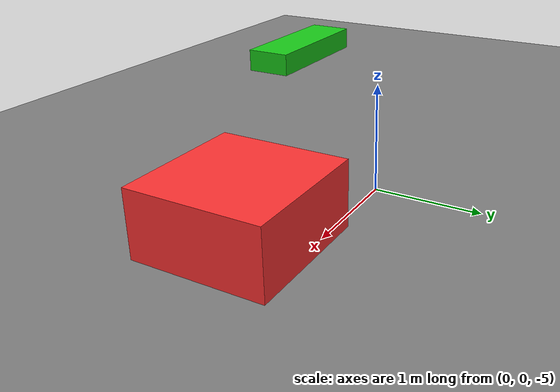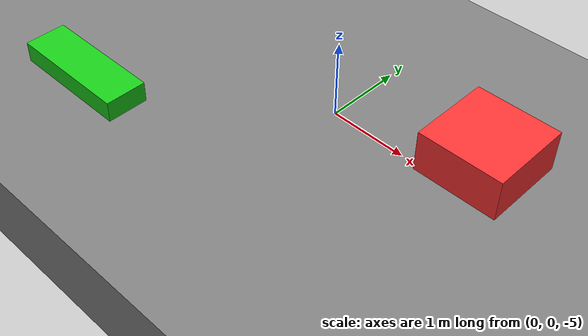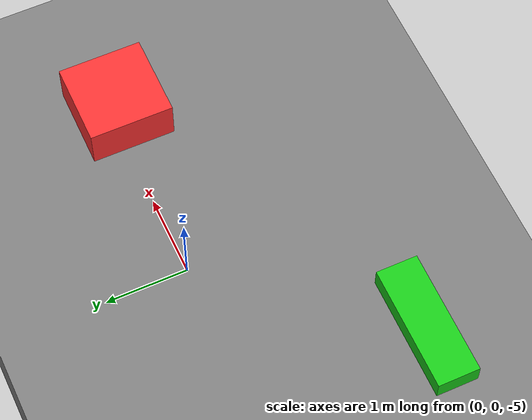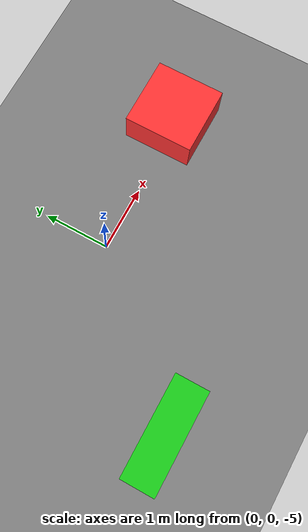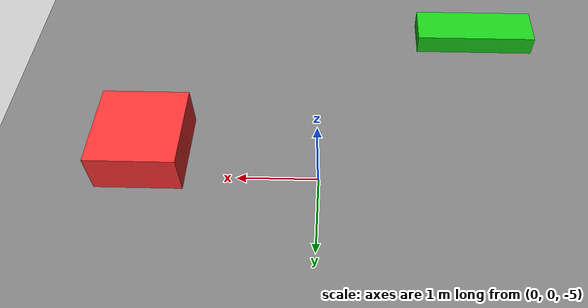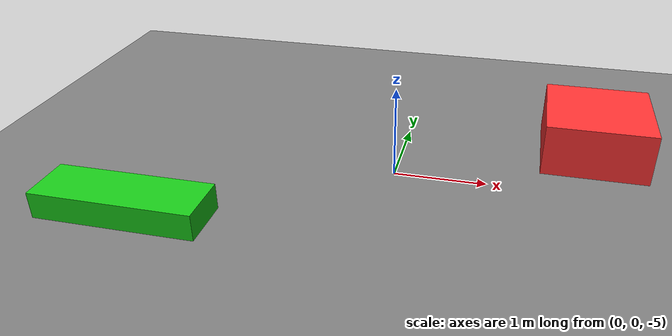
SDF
<?xml version="1.0" ?>
<sdf version='1.7'>
  <world name='PoolWorld2025'>
    <!-- Physics Settings -->
    <physics name='ode_physics' type='ode'>
      <max_step_size>0.003</max_step_size>
      <real_time_factor>1</real_time_factor>
      <real_time_update_rate>1000</real_time_update_rate>
    </physics>

    <!-- Gravity -->
    <gravity>0 0 -9.81</gravity>

    <!-- Buoyancy System (Graded for Air/Water Interface at Z = 0) -->
    <plugin filename="gz-sim-buoyancy-system" name="gz::sim::systems::Buoyancy">
      <graded_buoyancy>
        <default_density>997</default_density>
        <density_change>
          <above_depth>0</above_depth>
          <density>1</density>
        </density_change>
      </graded_buoyancy>
    </plugin>

    <!-- Lighting -->
    <light name='sun' type='directional'>
      <cast_shadows>1</cast_shadows>
      <pose>0 0 10 0 0 0</pose>
      <diffuse>0.8 0.8 0.8 1</diffuse>
      <specular>0.2 0.2 0.2 1</specular>
      <attenuation>
        <range>1000</range>
        <constant>0.9</constant>
        <linear>0.01</linear>
        <quadratic>0.001</quadratic>
      </attenuation>
      <direction>-0.5 0.1 -0.9</direction>
    </light>

    <light name='fill_light' type='point'>
      <pose>0 0 5 0 0 0</pose>
      <diffuse>0.6 0.7 0.9 1</diffuse>
      <attenuation>
        <range>50</range>
        <constant>0.5</constant>
        <linear>0.01</linear>
        <quadratic>0.002</quadratic>
      </attenuation>
    </light>

    <!-- Scene -->
    <scene>
      <ambient>0.1 0.2 0.4 1</ambient>
      <background>0 0.1 0.2 1</background>
      <fog>
        <type>linear</type>
        <color>0 0.2 0.3 1</color>
        <density>0.002</density>
        <start>2</start>
        <end>50</end>
      </fog>
      <shadows>1</shadows>
    </scene>

    <!-- Pool Base -->
    <model name='pool_base'>
      <static>1</static>
      <pose>0 0 -5 0 0 0</pose>
      <link name='link'>
        <collision name='collision'>
          <geometry>
            <box>
              <size>40 40 1</size>
            </box>
          </geometry>
        </collision>
        <visual name='visual'>
          <geometry>
            <box>
              <size>40 40 1</size>
            </box>
          </geometry>
          <material>
            <ambient>0.5 0.5 0.5 1</ambient>
            <diffuse>0.5 0.5 0.5 1</diffuse>
            <specular>0.3 0.3 0.3 1</specular>
          </material>
        </visual>
      </link>
    </model>

    <!-- Water Surface -->
    <model name='water_surface'>
      <static>1</static>
      <pose>0 0 0 0 0 0</pose>
      <link name='link'>
        <visual name='visual'>
          <geometry>
            <plane>
              <size>40 40</size>
              <normal>0 0 1</normal>
            </plane>
          </geometry>
          <material>
            <ambient>0 0.3 0.6 0.6</ambient>
            <diffuse>0 0.4 0.8 0.6</diffuse>
            <specular>0.1 0.3 0.5 1</specular>
          </material>
          <transparency>0.4</transparency>
        </visual>
      </link>
    </model>

    <!-- Obstacle 1 -->
    <model name='obstacle1'>
      <static>1</static>
      <pose>2 0 -4.5 0 0 0</pose>
      <link name='link'>
        <collision name='collision'>
          <geometry>
            <box>
              <size>1 1 1</size>
            </box>
          </geometry>
        </collision>
        <visual name='visual'>
          <geometry>
            <box>
              <size>1 1 1</size>
            </box>
          </geometry>
          <material>
            <ambient>0.8 0.1 0.1 1</ambient>
            <diffuse>1 0.2 0.2 1</diffuse>
          </material>
        </visual>
      </link>
    </model>

    <!-- Obstacle 2 -->
    <model name='obstacle2'>
      <static>1</static>
      <pose>-2 -2 -4.5 0 0 0</pose>
      <link name='link'>
        <collision name='collision'>
          <geometry>
            <box>
              <size>1.5 0.5 0.5</size>
            </box>
          </geometry>
        </collision>
        <visual name='visual'>
          <geometry>
            <box>
              <size>1.5 0.5 0.5</size>
            </box>
          </geometry>
          <material>
            <ambient>0.1 0.6 0.1 1</ambient>
            <diffuse>0.1 0.8 0.1 1</diffuse>
          </material>
        </visual>
      </link>
    </model>

    <!-- Magnetic Field -->
    <magnetic_field>6e-06 2.3e-05 -4.2e-05</magnetic_field>

    <!-- Atmosphere -->
    <atmosphere type='adiabatic'/>

  </world>
</sdf>
